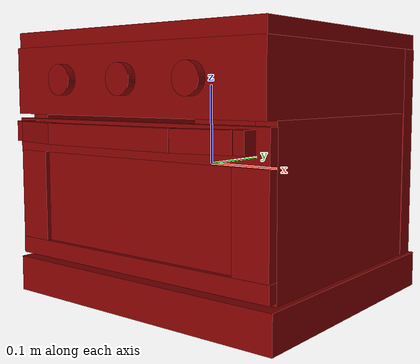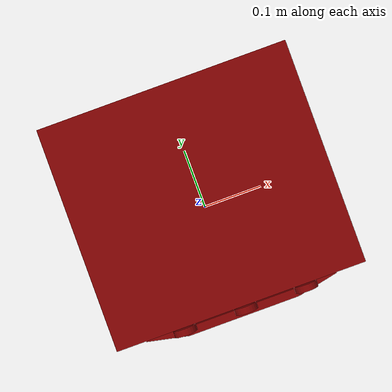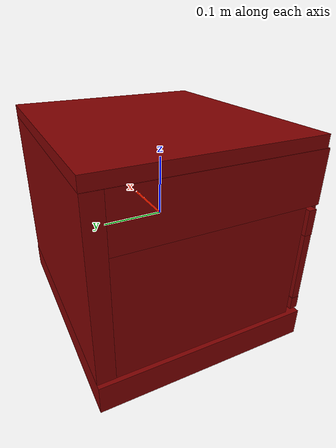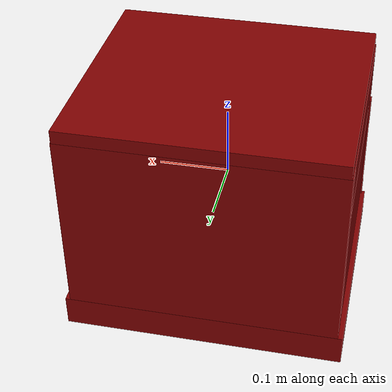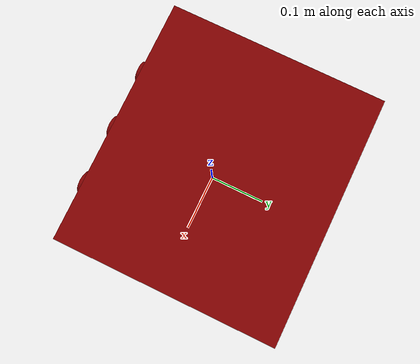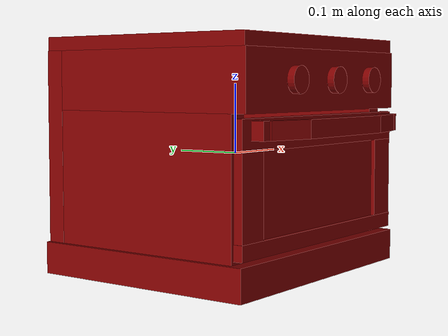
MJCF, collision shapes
<?xml version='1.0' encoding='UTF-8'?>
<mujoco model="model">
  <compiler angle="radian"/>
  <asset>
    <mesh file="visuals/Body001.obj" name="Body001_vis"/>
    <mesh file="visuals/Container001.obj" name="Container001_vis"/>
    <mesh file="visuals/Door001.obj" name="Door001_vis"/>
    <mesh file="visuals/Door001_Clear.obj" name="Door001_Clear_vis"/>
    <mesh file="visuals/Knob001.obj" name="Knob001_vis"/>
    <mesh file="visuals/Knob002.obj" name="Knob002_vis"/>
    <mesh file="visuals/Knob003.obj" name="Knob003_vis"/>
    <texture file="visuals/T_BC001.png" name="Body001_material" type="2d"/>
    <material name="Body001_material" rgba="1 1 1 1.0" texture="Body001_material" shininess="0.4472135901451111" specular="1"/>
    <texture file="visuals/T_BC001.png" name="Container001_material" type="2d"/>
    <material name="Container001_material" rgba="1 1 1 1.0" texture="Container001_material" shininess="0.4472135901451111" specular="1"/>
    <texture file="visuals/T_BC001.png" name="Door001_material" type="2d"/>
    <material name="Door001_material" rgba="1 1 1 1.0" texture="Door001_material" shininess="0.4472135901451111" specular="1"/>
    <texture file="visuals/T_BC001.png" name="Door001_Clear_material" type="2d"/>
    <material name="Door001_Clear_material" rgba="1 1 1 1.0" texture="Door001_Clear_material" shininess="0.4472135901451111" specular="0.5"/>
    <texture file="visuals/T_BC001.png" name="Knob001_material" type="2d"/>
    <material name="Knob001_material" rgba="1 1 1 1.0" texture="Knob001_material" shininess="0.4472135901451111" specular="1"/>
    <texture file="visuals/T_BC001.png" name="Knob002_material" type="2d"/>
    <material name="Knob002_material" rgba="1 1 1 1.0" texture="Knob002_material" shininess="0.4472135901451111" specular="1"/>
    <texture file="visuals/T_BC001.png" name="Knob003_material" type="2d"/>
    <material name="Knob003_material" rgba="1 1 1 1.0" texture="Knob003_material" shininess="0.4472135901451111" specular="1"/>
  </asset>
  <default>
    <default class="visual">
      <geom conaffinity="0" contype="0" group="1" type="mesh"/>
    </default>
    <default class="collision">
      <geom group="0" rgba="0.5 0 0 0.5"/>
    </default>
    <default class="spawn">
      <geom group="0" rgba="1 1 1 0.5" contype="0" conaffinity="0"/>
      <site group="0" rgba="1 1 1 0.5"/>
    </default>
    <default class="region">
      <geom group="1" conaffinity="0" contype="0" rgba="0 1 0 0"/>
    </default>
  </default>
  <worldbody>
    <body>
      <body name="object">
        <geom mesh="Body001_vis" type="mesh" solimp="0.998 0.998 0.001" solref="0.001 1" density="100" friction="0.95 0.3 0.1" class="visual" material="Body001_material"/>
        <geom class="collision" type="box" pos="0.000000 0.017588 0.155482" size="0.1886885166168213 0.16802182793617249 0.009449657052755356" quat="1.0 0.0 0.0 0.0"/>
        <geom class="collision" type="box" pos="-0.000123 0.172150 0.003432" size="0.18991005420684814 0.013430338352918625 0.14269602298736572" quat="1.0 0.0 0.0 0.0"/>
        <geom class="collision" type="box" pos="0.174593 0.025725 0.003432" size="0.013430324383080006 0.1567368358373642 0.14269591867923737" quat="1.0 0.0 0.0 0.0"/>
        <geom class="collision" type="box" pos="0.000000 0.017588 -0.144167" size="0.19652239978313446 0.1680220663547516 0.022299442440271378" quat="1.0 0.0 0.0 0.0"/>
        <geom class="collision" type="box" pos="-0.176250 0.025725 0.003432" size="0.01343032717704773 0.15673688054084778 0.14269593358039856" quat="1.0 0.0 0.0 0.0"/>
        <geom class="collision" type="box" pos="-0.000123 0.011564 0.105169" size="0.1899099051952362 0.1646275520324707 0.04099005088210106" quat="1.0 0.0 0.0 0.0"/>
        <geom class="collision" type="box" pos="0.159820 0.032198 -0.071598" size="0.0038679600693285465 0.13302765786647797 0.0047895838506519794" quat="1.9470718370939721e-07 0.0 0.0 1.0"/>
        <geom class="collision" type="box" pos="-0.160795 0.032198 -0.071598" size="0.0038679600693285465 0.13302765786647797 0.0047895838506519794" quat="1.9470718370939721e-07 0.0 0.0 1.0"/>
        <body name="Container001">
          <joint axis="0.0 -1.0 0.0" pos="0.000387 0.034657 -0.071730" limited="true" name="Container001_joint" range="0.0 0.23" type="slide" damping="1" frictionloss="1" armature=".01" stiffness="0.05"/>
          <geom mesh="Container001_vis" type="mesh" solimp="0.998 0.998 0.001" solref="0.001 1" density="100" friction="0.95 0.3 0.1" class="visual" material="Container001_material"/>
          <geom class="collision" type="box" pos="0.000000 0.035928 -0.070701" size="0.15575695037841797 0.12929701805114746 0.008766532875597477" quat="1.9470718370939721e-07 0.0 0.0 1.0"/>
        </body>
        <body name="Door001">
          <joint axis="1.0 0.0 0.0" pos="0.000029 -0.147295 -0.124309" limited="true" name="Door001_joint" range="0.0 1.5707963267948966" type="hinge" damping="1" frictionloss="1" armature=".01" stiffness="0.2" springref="-0.1"/>
          <geom mesh="Door001_vis" type="mesh" solimp="0.998 0.998 0.001" solref="0.001 1" density="100" friction="0.95 0.3 0.1" class="visual" material="Door001_material"/>
          <geom class="collision" type="box" pos="0.000000 -0.142914 0.038101" size="0.1920400708913803 0.006585936993360519 0.020412173122167587" quat="1.9470718370939721e-07 0.0 1.0 0.0"/>
          <geom class="collision" type="box" pos="0.000000 -0.142914 -0.105229" size="0.19203989207744598 0.006585933268070221 0.010524661280214787" quat="1.9470718370939721e-07 0.0 1.0 0.0"/>
          <geom class="collision" type="box" pos="-0.168712 -0.143047 -0.037583" size="0.022940322756767273 0.00626138923689723 0.06373807787895203" quat="1.0 0.0 0.0 0.0"/>
          <geom class="collision" type="box" pos="0.168240 -0.143047 -0.037583" size="0.022940322756767273 0.0062613897025585175 0.06373807787895203" quat="1.0 0.0 0.0 0.0"/>
          <geom class="collision" type="box" pos="0.000000 -0.178726 0.043544" size="0.0933861956000328 0.006883326452225447 0.012226472608745098" quat="1.9470718370939721e-07 0.0 1.0 0.0"/>
          <geom class="collision" type="box" pos="-0.126083 -0.171626 0.043544" size="0.03461498022079468 0.006883325986564159 0.012226472608745098" quat="1.9367350034826813e-07 -0.10290627181529999 -0.9946910738945007 -2.0036592829342226e-08"/>
          <geom class="collision" type="box" pos="0.126766 -0.171626 0.043544" size="0.03461497649550438 0.006883326452225447 0.012226472608745098" quat="0.9946910738945007 2.2270647548339184e-07 -2.6059555580104643e-07 0.10290633887052536"/>
          <geom class="collision" type="box" pos="-0.164726 -0.156088 0.043544" size="0.009358437731862068 0.01236650999635458 0.012226472608745098" quat="1.9470718370939721e-07 0.0 1.0 0.0"/>
          <geom class="collision" type="box" pos="0.165756 -0.156088 0.043544" size="0.009358437731862068 0.01236650999635458 0.012226472608745098" quat="1.9470718370939721e-07 0.0 1.0 0.0"/>
          <body name="Door001_Clear">
            <geom mesh="Door001_Clear_vis" type="mesh" solimp="0.998 0.998 0.001" solref="0.001 1" density="100" friction="0.95 0.3 0.1" class="visual" material="Door001_Clear_material"/>
            <geom class="collision" type="box" pos="0.000000 -0.142198 -0.038133" size="0.15277935564517975 0.001409744843840599 0.06239912286400795" quat="1.9470718370939721e-07 0.0 1.0 0.0"/>
          </body>
        </body>
        <body name="Knob001">
          <joint axis="0.0 1.0 0.0" pos="-0.091963 -0.163716 0.105476" limited="true" name="Knob001_joint" range="0.0 4.014257279586958" type="hinge" damping="0.05" armature="0.001"/>
          <geom mesh="Knob001_vis" type="mesh" solimp="0.998 0.998 0.001" solref="0.001 1" density="100" friction="0.95 0.3 0.1" class="visual" material="Knob001_material"/>
          <geom class="collision" type="cylinder" pos="-0.092205 -0.165286 0.105849" size="0.01812843047082424 0.005140672437846661" quat="0.7071068286895752 -0.7071067690849304 -1.5700924318127872e-16 2.4643894772246815e-23"/>
        </body>
        <body name="Knob002">
          <joint axis="0.0 1.0 0.0" pos="0.006529 -0.163716 0.105528" limited="true" name="Knob002_joint" range="0.0 3.3161255787892263" type="hinge" damping="0.05" armature="0.001"/>
          <geom mesh="Knob002_vis" type="mesh" solimp="0.998 0.998 0.001" solref="0.001 1" density="100" friction="0.95 0.3 0.1" class="visual" material="Knob002_material"/>
          <geom class="collision" type="cylinder" pos="0.005749 -0.165286 0.105652" size="0.01812843047082424 0.005140672437846661" quat="0.5000000596046448 -0.5000000596046448 -0.4999999403953552 -0.4999999701976776"/>
        </body>
        <body name="Knob003">
          <joint axis="0.0 1.0 0.0" pos="0.102815 -0.163716 0.105528" limited="true" name="Knob003_joint" range="0.0 3.3161255787892263" type="hinge" damping="0.05" armature="0.001"/>
          <geom mesh="Knob003_vis" type="mesh" solimp="0.998 0.998 0.001" solref="0.001 1" density="100" friction="0.95 0.3 0.1" class="visual" material="Knob003_material"/>
          <geom class="collision" type="cylinder" pos="0.102778 -0.165286 0.105674" size="0.01812843047082424 0.005140672437846661" quat="0.5416748523712158 -0.5416755676269531 -0.454519122838974 -0.4545198976993561"/>
        </body>
        <geom class="region" name="reg_main" type="box" pos="0.0 0.020143499999999995 0.0" size="0.196892 0.1640745 0.166885"/>
        <geom class="region" name="reg_int" type="box" pos="-0.00026249999999999885 0.025466500000000003 -0.0359705" size="0.1601935 0.1521855 0.0945495"/>
      </body>
    </body>
  </worldbody>
  <actuator>
    <motor name="Container001_joint_actuator" joint="Container001_joint" gear="10"/>
    <motor name="Door001_joint_actuator" joint="Door001_joint" gear="10"/>
    <motor name="Knob001_joint_actuator" joint="Knob001_joint" gear="10"/>
    <motor name="Knob002_joint_actuator" joint="Knob002_joint" gear="10"/>
    <motor name="Knob003_joint_actuator" joint="Knob003_joint" gear="10"/>
  </actuator>
</mujoco>
